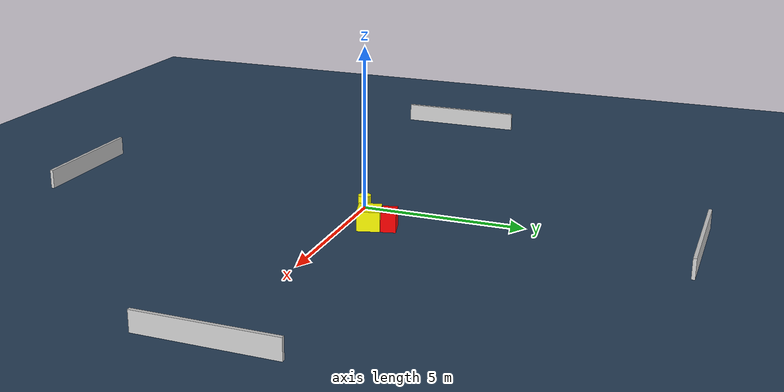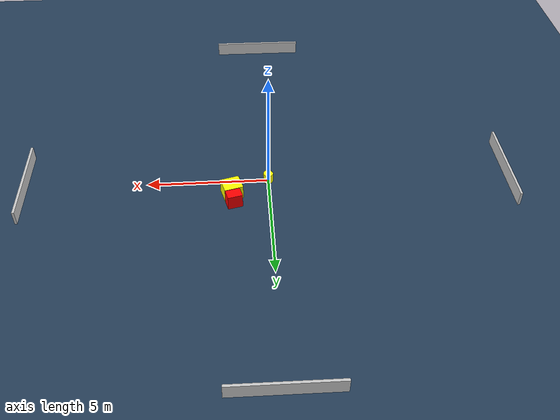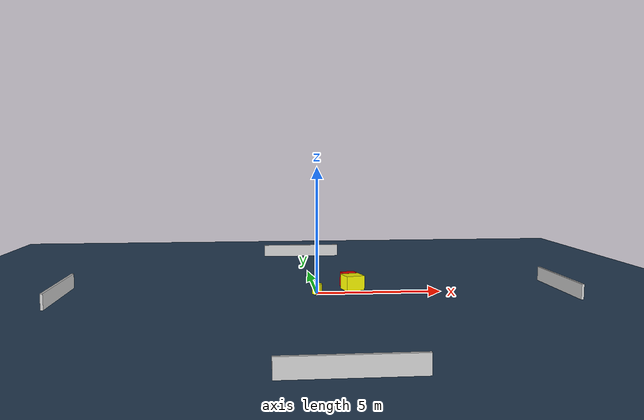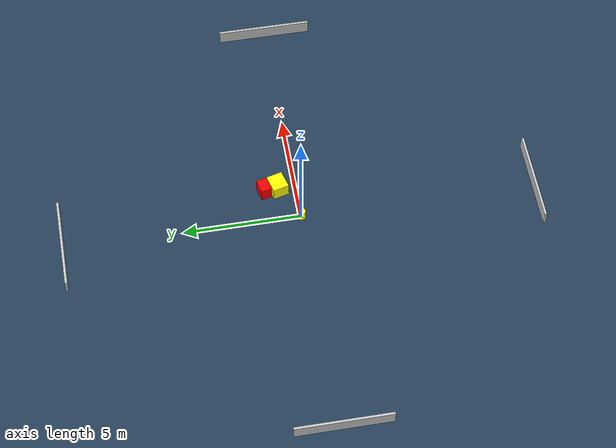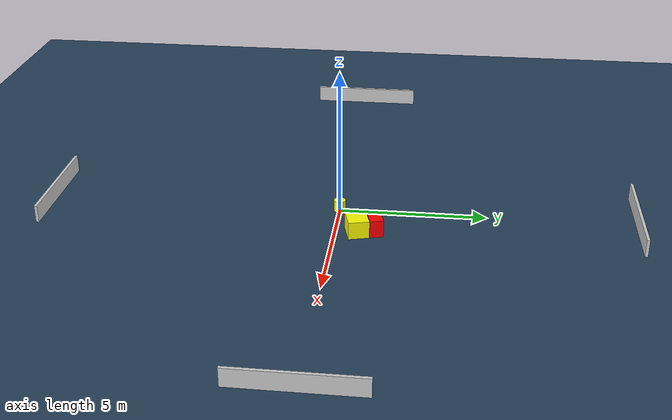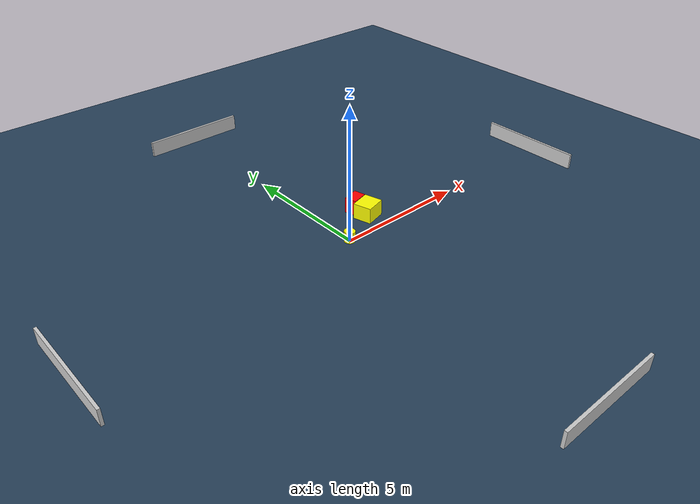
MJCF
<?xml version="1.0" ?>
<mujoco model="generated_environment">
  <option timestep="0.01" integrator="RK4" cone="elliptic"/>
  <default>
    <geom density="1"/>
  </default>
  <asset>
    <texture builtin="gradient" height="3072" name="skybox" rgb1="0.3 0.5 0.7" rgb2="0 0 0" type="skybox" width="512"/>
    <texture builtin="checker" height="300" name="groundplane" rgb1="0.2 0.3 0.4" rgb2="0.1 0.2 0.3" type="2d" width="300"/>
    <material name="groundplane" reflectance="0.2" texrepeat="5 5" texture="groundplane"/>
  </asset>
  <worldbody>
    <light dir="0 0 -1" directional="true" pos="0 0 1.5"/>
    <geom condim="3" friction="0.5 0.005 0.001" material="groundplane" name="floor" pos="0 0 0" size="0 0 0.05" type="plane"/>
    <body name="walls">
      <geom name="wall_1" condim="4" pos="-10.0 0.0 0.3" rgba="0.800000011920929 0.800000011920929 0.800000011920929 1.0" size="0.05 2.0 0.3" type="box"/>
      <geom name="wall_2" condim="4" pos="10.0 0.0 0.3" rgba="0.800000011920929 0.800000011920929 0.800000011920929 1.0" size="0.05 2.0 0.3" type="box"/>
      <geom name="wall_3" condim="4" pos="0.0 -10.0 0.3" rgba="0.800000011920929 0.800000011920929 0.800000011920929 1.0" size="2.0 0.05 0.3" type="box"/>
      <geom name="wall_4" condim="4" pos="0.0 10.0 0.3" rgba="0.800000011920929 0.800000011920929 0.800000011920929 1.0" size="2.0 0.05 0.3" type="box"/>
    </body>
    <body name="robot">
      <joint name="joint_x" type="slide" pos="0 0 0" axis="1 0 0"/>
      <joint name="joint_y" type="slide" pos="0 0 0" axis="0 1 0"/>
      <geom name="robot" type="cylinder" pos="0.0 0.0 0.2" size="0.2 0.2 0.0" mass="5.0" friction="1.0 0.005 0.0001" condim="4" rgba="1.0 1.0 0.0 1.0"/>
    </body>
    <body name="obstacle_1_movable">
      <geom name="obstacle_1_movable" condim="4" pos="1.5216182630886776 0.7429985854828272 0.3" euler="0 0 105.18877540987613" friction="0.0 0.005 0.001" rgba="1.0 1.0 0.0 1.0" size="0.3462489579618121 0.38698556625089275 0.3" type="box" mass="0.1"/>
      <joint type="free"/>
    </body>
    <body name="obstacle_2_static">
      <geom name="obstacle_2_static" condim="4" pos="1.4464482466541901 1.3386516911338895 0.3" euler="0 0 104.03104053925567" friction="0.0 0.005 0.001" rgba="1.0 0.0 0.0 1.0" size="0.2240502391885727 0.3053945940681081 0.3" type="box"/>
    </body>
  </worldbody>
  <actuator>
    <motor name="actuator_x" joint="joint_x" gear="1" ctrlrange="-1 1"/>
    <motor name="actuator_y" joint="joint_y" gear="1" ctrlrange="-1 1"/>
  </actuator>
</mujoco>
